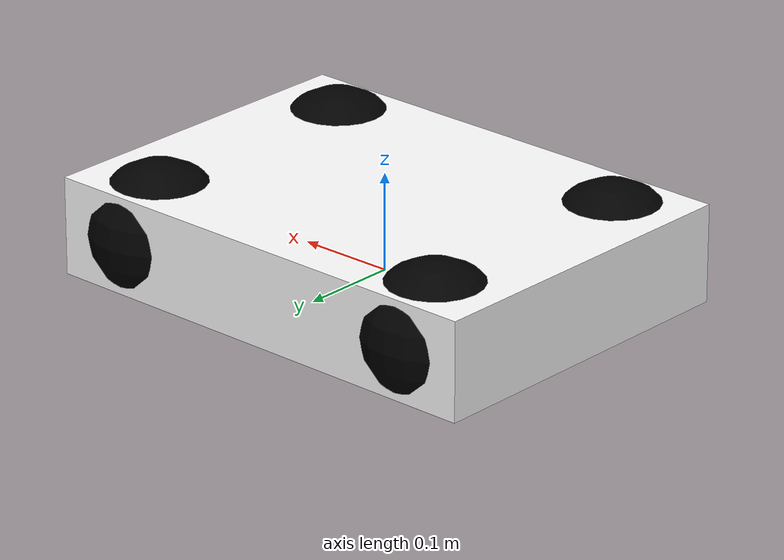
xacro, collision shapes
<?xml version="1.0" encoding="utf-8"?>
<robot name="fw_mini" xmlns:xacro="http://www.ros.org/wiki/xacro">

  <!-- 메시 파일 절대경로 (Gazebo 렌더러가 package:// 를 못 찾는 문제 우회) -->
  <xacro:property name="mesh_path" value="file://$(find fw_mini_description)/meshes"/>

  <!-- ROS2 control + transmission macros -->
  <xacro:include filename="$(find fw_mini_description)/urdf/macros.xacro" />

  <!-- Gazebo plugins (materials, sensors, ros2_control plugin) -->
  <xacro:include filename="$(find fw_mini_description)/urdf/fw_mini.gazebo.xacro" />

  <!-- Base links                -->
  <link name="base_footprint"/>

  <link name="base_link">
    <visual>
      <geometry>
        <mesh filename="${mesh_path}/fw-mini-chassis.STL" scale="1 1 1"/>
      </geometry>
      <origin xyz="0.2475 0.19 0.07" rpy="1.57 0 -1.57"/>
      <material name="white">
        <color rgba="1 1 1 1"/>
      </material>
    </visual>
    <collision>
      <geometry>
        <box size="0.495 0.36 0.1"/>
      </geometry>
      <origin xyz="0.0 0.0 0.0" rpy="0.0 0.0 0.0"/>
    </collision>
    <inertial>
      <origin xyz="0 0 0"/>
      <mass value="20"/>
      <inertia ixx="0.132" ixy="0" ixz="0" iyy="0.147" iyz="0" izz="0.0182"/>
    </inertial>
  </link>

  <joint name="base_link2base_footprint" type="fixed">
    <parent link="base_footprint"/>
    <child link="base_link"/>
    <origin xyz="0 0 0.032"/>
  </joint>

  <!-- IMU frame                 -->
  <link name="sensor"/>
  <joint name="imu_joint" type="fixed">
    <origin xyz="0 0 0.30" rpy="0 0 0"/>
    <parent link="base_link"/>
    <child link="sensor"/>
  </joint>

  <!-- Livox frame               -->
  <link name="livox_frame"/>
  <joint name="livox_lidar_joint" type="fixed">
    <origin xyz="0 0 0.22" rpy="0 0 0"/>
    <parent link="base_link"/>
    <child link="livox_frame"/>
  </joint>

  <!-- Front-left steering + wheel -->
  <link name="left_steering_hinge">
    <visual>
      <geometry><cylinder radius="0.02" length="0.005"/></geometry>
      <origin xyz="0 0 0" rpy="1.57 0 0"/>
      <material name="black"><color rgba="0 0 0 1"/></material>
    </visual>
    <collision>
      <geometry><cylinder radius="0.01" length="0.005"/></geometry>
      <origin xyz="0 0 0" rpy="1.57 0 0"/>
    </collision>
    <inertial>
      <origin xyz="0 0 0"/>
      <mass value="1"/>
      <inertia ixx="2.7e-5" ixy="0" ixz="0" iyy="2.7e-5" iyz="0" izz="5e-5"/>
    </inertial>
  </link>

  <joint name="left_steering_hinge_joint" type="fixed">
    <parent link="base_link"/>
    <child link="left_steering_hinge"/>
    <origin xyz="0.175 0.125 0"/>
  </joint>

  <link name="left_front_wheel">
    <visual>
      <geometry>
        <mesh filename="${mesh_path}/fw-mini-luntai.STL" scale="1 1 1"/>
      </geometry>
      <origin xyz="0.073 -0.305 0.425" rpy="1.57 1.57 -3.14"/>
      <material name="black"><color rgba="0 0 0 1"/></material>
    </visual>
    <collision>
      <geometry><sphere radius="0.07"/></geometry>
      <origin xyz="0 0 0"/>
    </collision>
    <inertial>
      <origin xyz="0 0 0"/>
      <mass value="4"/>
      <inertia ixx="0.01603" ixy="0" ixz="0" iyy="0.01603" iyz="0" izz="0.0288"/>
    </inertial>
  </link>

  <joint name="left_front_wheel_joint" type="continuous">
    <parent link="left_steering_hinge"/>
    <child link="left_front_wheel"/>
    <origin xyz="0 0 0"/>
    <axis xyz="0 1 0"/>
    <limit effort="10" velocity="1000"/>
  </joint>

  <!-- Front-right steering + wheel -->
  <link name="right_steering_hinge">
    <visual>
      <geometry><cylinder radius="0.02" length="0.005"/></geometry>
      <origin xyz="0 0 0" rpy="1.57 0 0"/>
      <material name="black"><color rgba="0 0 0 1"/></material>
    </visual>
    <collision>
      <geometry><cylinder radius="0.01" length="0.005"/></geometry>
      <origin xyz="0 0 0" rpy="1.57 0 0"/>
    </collision>
    <inertial>
      <origin xyz="0 0 0"/>
      <mass value="1"/>
      <inertia ixx="2.7e-5" ixy="0" ixz="0" iyy="2.7e-5" iyz="0" izz="5e-5"/>
    </inertial>
  </link>

  <joint name="right_steering_hinge_joint" type="fixed">
    <parent link="base_link"/>
    <child link="right_steering_hinge"/>
    <origin xyz="0.175 -0.125 0"/>
  </joint>

  <link name="right_front_wheel">
    <visual>
      <geometry>
        <mesh filename="${mesh_path}/fw-mini-luntai.STL" scale="1 1 1"/>
      </geometry>
      <origin xyz="-0.073 0.305 0.425" rpy="1.57 1.57 0"/>
      <material name="black"><color rgba="0 0 0 1"/></material>
    </visual>
    <collision>
      <geometry><sphere radius="0.07"/></geometry>
      <origin xyz="0 0 0"/>
    </collision>
    <inertial>
      <origin xyz="0 0 0"/>
      <mass value="4"/>
      <inertia ixx="0.01603" ixy="0" ixz="0" iyy="0.01603" iyz="0" izz="0.0288"/>
    </inertial>
  </link>

  <joint name="right_front_wheel_joint" type="continuous">
    <parent link="right_steering_hinge"/>
    <child link="right_front_wheel"/>
    <origin xyz="0 0 0"/>
    <axis xyz="0 1 0"/>
    <limit effort="10" velocity="1000"/>
  </joint>

  <!-- Rear-left steering + wheel -->
  <link name="rear_left_steering_hinge">
    <visual>
      <geometry><cylinder radius="0.02" length="0.005"/></geometry>
      <origin xyz="0 0 0" rpy="1.57 0 0"/>
      <material name="black"><color rgba="0 0 0 1"/></material>
    </visual>
    <collision>
      <geometry><cylinder radius="0.01" length="0.005"/></geometry>
      <origin xyz="0 0 0" rpy="1.57 0 0"/>
    </collision>
    <inertial>
      <origin xyz="0 0 0"/>
      <mass value="1"/>
      <inertia ixx="2.7e-5" ixy="0" ixz="0" iyy="2.7e-5" iyz="0" izz="5e-5"/>
    </inertial>
  </link>

  <joint name="rear_left_steering_hinge_joint" type="fixed">
    <parent link="base_link"/>
    <child link="rear_left_steering_hinge"/>
    <origin xyz="-0.175 0.125 0"/>
  </joint>

  <link name="left_rear_wheel">
    <visual>
      <geometry>
        <mesh filename="${mesh_path}/fw-mini-luntai.STL" scale="1 1 1"/>
      </geometry>
      <origin xyz="0.073 -0.305 0.425" rpy="1.57 1.57 3.14"/>
      <material name="black"><color rgba="0 0 0 1"/></material>
    </visual>
    <collision>
      <geometry><sphere radius="0.07"/></geometry>
      <origin xyz="0 0 0"/>
    </collision>
    <inertial>
      <origin xyz="0 0 0"/>
      <mass value="4"/>
      <inertia ixx="0.01603" ixy="0" ixz="0" iyy="0.01603" iyz="0" izz="0.0288"/>
    </inertial>
  </link>

  <joint name="left_rear_wheel_joint" type="continuous">
    <parent link="rear_left_steering_hinge"/>
    <child link="left_rear_wheel"/>
    <origin xyz="0 0 0"/>
    <axis xyz="0 1 0"/>
    <limit effort="10" velocity="1000"/>
  </joint>

  <!-- Rear-right steering + wheel -->
  <link name="rear_right_steering_hinge">
    <visual>
      <geometry><cylinder radius="0.02" length="0.005"/></geometry>
      <origin xyz="0 0 0" rpy="1.57 0 0"/>
      <material name="black"><color rgba="0 0 0 1"/></material>
    </visual>
    <collision>
      <geometry><cylinder radius="0.01" length="0.005"/></geometry>
      <origin xyz="0 0 0" rpy="1.57 0 0"/>
    </collision>
    <inertial>
      <origin xyz="0 0 0"/>
      <mass value="1"/>
      <inertia ixx="2.7e-5" ixy="0" ixz="0" iyy="2.7e-5" iyz="0" izz="5e-5"/>
    </inertial>
  </link>

  <joint name="rear_right_steering_hinge_joint" type="fixed">
    <parent link="base_link"/>
    <child link="rear_right_steering_hinge"/>
    <origin xyz="-0.175 -0.125 0"/>
  </joint>

  <link name="right_rear_wheel">
    <visual>
      <geometry>
        <mesh filename="${mesh_path}/fw-mini-luntai.STL" scale="1 1 1"/>
      </geometry>
      <origin xyz="-0.073 0.305 0.425" rpy="1.57 1.57 0"/>
      <material name="black"><color rgba="0 0 0 1"/></material>
    </visual>
    <collision>
      <geometry><sphere radius="0.07"/></geometry>
      <origin xyz="0 0 0"/>
    </collision>
    <inertial>
      <origin xyz="0 0 0"/>
      <mass value="4"/>
      <inertia ixx="0.01603" ixy="0" ixz="0" iyy="0.01603" iyz="0" izz="0.0288"/>
    </inertial>
  </link>

  <joint name="right_rear_wheel_joint" type="continuous">
    <parent link="rear_right_steering_hinge"/>
    <child link="right_rear_wheel"/>
    <origin xyz="0 0 0"/>
    <axis xyz="0 1 0"/>
    <limit effort="10" velocity="1000"/>
  </joint>

</robot>
